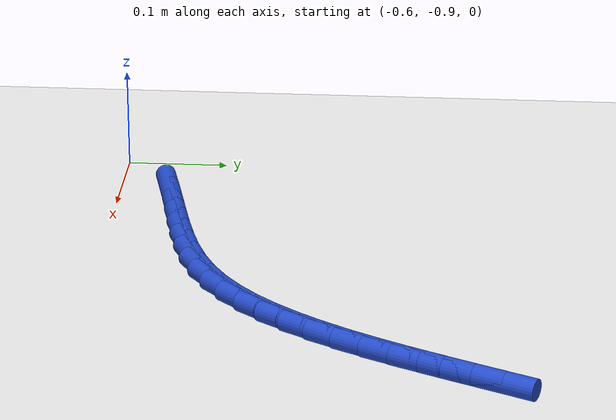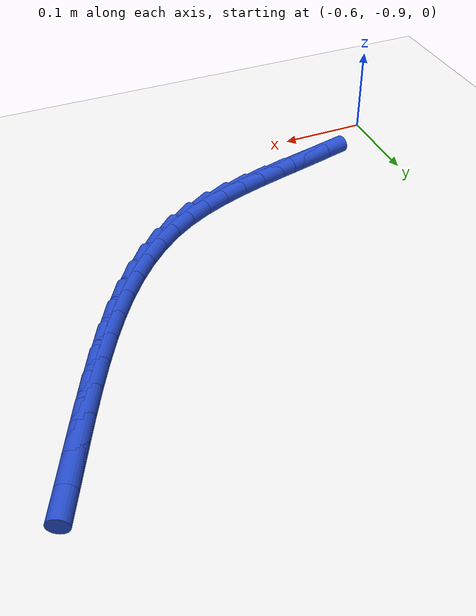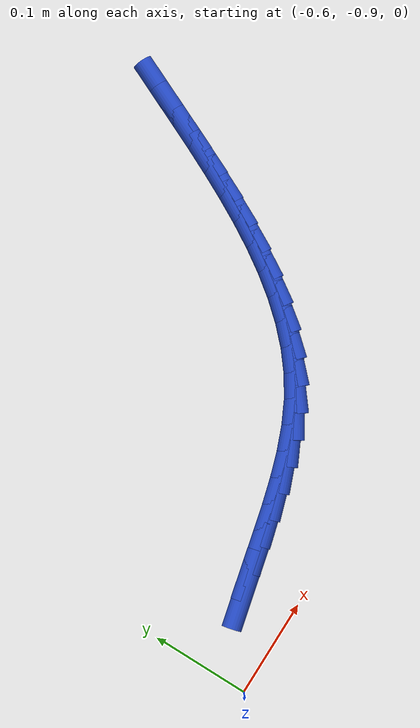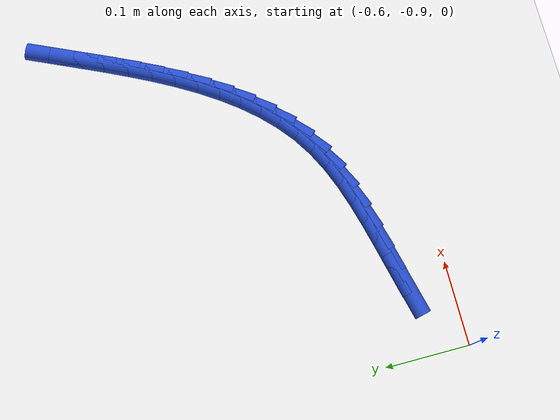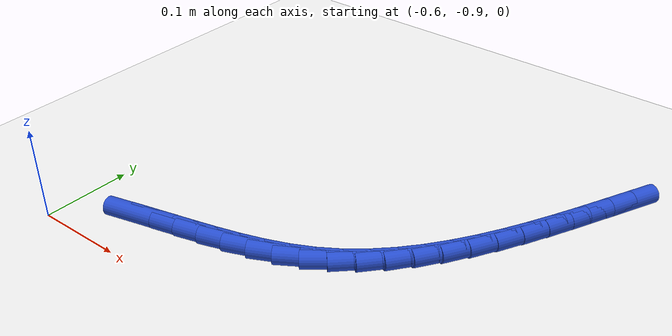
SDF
<sdf version="1.6">
 <world name="default">
  <model name="ground_plane">
   <static>1</static>
   <link name="link">
    <collision name="collision">
     <geometry><plane><normal>0 0 1</normal><size>100 100</size></plane></geometry>
     <surface><friction><ode><mu>100</mu><mu2>50</mu2></ode></friction></surface>
    </collision>
    <visual name="visual">
     <cast_shadows>0</cast_shadows>
     <geometry><plane><normal>0 0 1</normal><size>100 100</size></plane></geometry>
     <material>
      <script><uri>file://media/materials/scripts/gazebo.material</uri><name>Gazebo/WhiteGlow</name></script>
     </material>
    </visual>
   </link>
  </model>
  <model name="line">
   <link name="link_201">
    <pose>-0.5146840576461971 -0.8475410567459667 0.01 0 1.57 0.2367666832200426</pose>
    <collision name="collision">
     <geometry><cylinder><radius>0.01</radius><length>0.08</length></cylinder></geometry>
    </collision>
    <visual name="visual">
     <material>
      <script><name>Gazebo/Blue</name><uri>file://media/materials/scripts/gazebo.material</uri></script>
     </material>
     <geometry><cylinder><radius>0.01</radius><length>0.08</length></cylinder></geometry>
    </visual>
   </link>
   <link name="link_202">
    <pose>-0.4872952087282184 -0.8409323342285917 0.01 0 1.57 0.22991365613538595</pose>
    <collision name="collision">
     <geometry><cylinder><radius>0.01</radius><length>0.08</length></cylinder></geometry>
    </collision>
    <visual name="visual">
     <material>
      <script><name>Gazebo/Blue</name><uri>file://media/materials/scripts/gazebo.material</uri></script>
     </material>
     <geometry><cylinder><radius>0.01</radius><length>0.08</length></cylinder></geometry>
    </visual>
   </link>
   <link name="link_203">
    <pose>-0.4599120040511283 -0.8345232325570638 0.01 0 1.57 0.2395872582302375</pose>
    <collision name="collision">
     <geometry><cylinder><radius>0.01</radius><length>0.08</length></cylinder></geometry>
    </collision>
    <visual name="visual">
     <material>
      <script><name>Gazebo/Blue</name><uri>file://media/materials/scripts/gazebo.material</uri></script>
     </material>
     <geometry><cylinder><radius>0.01</radius><length>0.08</length></cylinder></geometry>
    </visual>
   </link>
   <link name="link_204">
    <pose>-0.4327977948873865 -0.8278997928603868 0.01 0 1.57 0.2663269018035899</pose>
    <collision name="collision">
     <geometry><cylinder><radius>0.01</radius><length>0.08</length></cylinder></geometry>
    </collision>
    <visual name="visual">
     <material>
      <script><name>Gazebo/Blue</name><uri>file://media/materials/scripts/gazebo.material</uri></script>
     </material>
     <geometry><cylinder><radius>0.01</radius><length>0.08</length></cylinder></geometry>
    </visual>
   </link>
   <link name="link_205">
    <pose>-0.4062159325094532 -0.8206480562675655 0.01 0 1.57 0.3111944841151011</pose>
    <collision name="collision">
     <geometry><cylinder><radius>0.01</radius><length>0.08</length></cylinder></geometry>
    </collision>
    <visual name="visual">
     <material>
      <script><name>Gazebo/Blue</name><uri>file://media/materials/scripts/gazebo.material</uri></script>
     </material>
     <geometry><cylinder><radius>0.01</radius><length>0.08</length></cylinder></geometry>
    </visual>
   </link>
   <link name="link_206">
    <pose>-0.380429768189788 -0.8123540639076038 0.01 0 1.57 0.3755936410815409</pose>
    <collision name="collision">
     <geometry><cylinder><radius>0.01</radius><length>0.08</length></cylinder></geometry>
    </collision>
    <visual name="visual">
     <material>
      <script><name>Gazebo/Blue</name><uri>file://media/materials/scripts/gazebo.material</uri></script>
     </material>
     <geometry><cylinder><radius>0.01</radius><length>0.08</length></cylinder></geometry>
    </visual>
   </link>
   <link name="link_207">
    <pose>-0.355702653200851 -0.8026038569095059 0.01 0 1.57 0.46084162789260524</pose>
    <collision name="collision">
     <geometry><cylinder><radius>0.01</radius><length>0.08</length></cylinder></geometry>
    </collision>
    <visual name="visual">
     <material>
      <script><name>Gazebo/Blue</name><uri>file://media/materials/scripts/gazebo.material</uri></script>
     </material>
     <geometry><cylinder><radius>0.01</radius><length>0.08</length></cylinder></geometry>
    </visual>
   </link>
   <link name="link_208">
    <pose>-0.33229793881510133 -0.7909834764022757 0.01 0 1.57 0.5660386385059627</pose>
    <collision name="collision">
     <geometry><cylinder><radius>0.01</radius><length>0.08</length></cylinder></geometry>
    </collision>
    <visual name="visual">
     <material>
      <script><name>Gazebo/Blue</name><uri>file://media/materials/scripts/gazebo.material</uri></script>
     </material>
     <geometry><cylinder><radius>0.01</radius><length>0.08</length></cylinder></geometry>
    </visual>
   </link>
   <link name="link_209">
    <pose>-0.3104607050661104 -0.7771082328702877 0.01 0 1.57 0.6732656633974695</pose>
    <collision name="collision">
     <geometry><cylinder><radius>0.01</radius><length>0.08</length></cylinder></geometry>
    </collision>
    <visual name="visual">
     <material>
      <script><name>Gazebo/Blue</name><uri>file://media/materials/scripts/gazebo.material</uri></script>
     </material>
     <geometry><cylinder><radius>0.01</radius><length>0.08</length></cylinder></geometry>
    </visual>
   </link>
   <link name="link_210">
    <pose>-0.29020954939528315 -0.7609562474160072 0.01 0 1.57 0.7693418570343861</pose>
    <collision name="collision">
     <geometry><cylinder><radius>0.01</radius><length>0.08</length></cylinder></geometry>
    </collision>
    <visual name="visual">
     <material>
      <script><name>Gazebo/Blue</name><uri>file://media/materials/scripts/gazebo.material</uri></script>
     </material>
     <geometry><cylinder><radius>0.01</radius><length>0.08</length></cylinder></geometry>
    </visual>
   </link>
   <link name="link_211">
    <pose>-0.2714099756465933 -0.7427508872872189 0.01 0 1.57 0.8531418538999869</pose>
    <collision name="collision">
     <geometry><cylinder><radius>0.01</radius><length>0.08</length></cylinder></geometry>
    </collision>
    <visual name="visual">
     <material>
      <script><name>Gazebo/Blue</name><uri>file://media/materials/scripts/gazebo.material</uri></script>
     </material>
     <geometry><cylinder><radius>0.01</radius><length>0.08</length></cylinder></geometry>
    </visual>
   </link>
   <link name="link_212">
    <pose>-0.2539246035649222 -0.7227201398738766 0.01 0 1.57 0.9247127865218767</pose>
    <collision name="collision">
     <geometry><cylinder><radius>0.01</radius><length>0.08</length></cylinder></geometry>
    </collision>
    <visual name="visual">
     <material>
      <script><name>Gazebo/Blue</name><uri>file://media/materials/scripts/gazebo.material</uri></script>
     </material>
     <geometry><cylinder><radius>0.01</radius><length>0.08</length></cylinder></geometry>
    </visual>
   </link>
   <link name="link_213">
    <pose>-0.23761605289515134 -0.7010919925659335 0.01 0 1.57 0.9846804826986627</pose>
    <collision name="collision">
     <geometry><cylinder><radius>0.01</radius><length>0.08</length></cylinder></geometry>
    </collision>
    <visual name="visual">
     <material>
      <script><name>Gazebo/Blue</name><uri>file://media/materials/scripts/gazebo.material</uri></script>
     </material>
     <geometry><cylinder><radius>0.01</radius><length>0.08</length></cylinder></geometry>
    </visual>
   </link>
   <link name="link_214">
    <pose>-0.22234694338216182 -0.6780944327533427 0.01 0 1.57 1.0339282504254774</pose>
    <collision name="collision">
     <geometry><cylinder><radius>0.01</radius><length>0.08</length></cylinder></geometry>
    </collision>
    <visual name="visual">
     <material>
      <script><name>Gazebo/Blue</name><uri>file://media/materials/scripts/gazebo.material</uri></script>
     </material>
     <geometry><cylinder><radius>0.01</radius><length>0.08</length></cylinder></geometry>
    </visual>
   </link>
   <link name="link_215">
    <pose>-0.20797989477083464 -0.6539554478260566 0.01 0 1.57 1.0733771109103103</pose>
    <collision name="collision">
     <geometry><cylinder><radius>0.01</radius><length>0.08</length></cylinder></geometry>
    </collision>
    <visual name="visual">
     <material>
      <script><name>Gazebo/Blue</name><uri>file://media/materials/scripts/gazebo.material</uri></script>
     </material>
     <geometry><cylinder><radius>0.01</radius><length>0.08</length></cylinder></geometry>
    </visual>
   </link>
   <link name="link_216">
    <pose>-0.1943775268060519 -0.62890302517403 0.01 0 1.57 1.103855332019859</pose>
    <collision name="collision">
     <geometry><cylinder><radius>0.01</radius><length>0.08</length></cylinder></geometry>
    </collision>
    <visual name="visual">
     <material>
      <script><name>Gazebo/Blue</name><uri>file://media/materials/scripts/gazebo.material</uri></script>
     </material>
     <geometry><cylinder><radius>0.01</radius><length>0.08</length></cylinder></geometry>
    </visual>
   </link>
   <link name="link_217">
    <pose>-0.18140245923269452 -0.6031651521872151 0.01 0 1.57 1.1260293346509591</pose>
    <collision name="collision">
     <geometry><cylinder><radius>0.01</radius><length>0.08</length></cylinder></geometry>
    </collision>
    <visual name="visual">
     <material>
      <script><name>Gazebo/Blue</name><uri>file://media/materials/scripts/gazebo.material</uri></script>
     </material>
     <geometry><cylinder><radius>0.01</radius><length>0.08</length></cylinder></geometry>
    </visual>
   </link>
   <link name="link_218">
    <pose>-0.16891731179564387 -0.5769698162555656 0.01 0 1.57 1.1403701355599836</pose>
    <collision name="collision">
     <geometry><cylinder><radius>0.01</radius><length>0.08</length></cylinder></geometry>
    </collision>
    <visual name="visual">
     <material>
      <script><name>Gazebo/Blue</name><uri>file://media/materials/scripts/gazebo.material</uri></script>
     </material>
     <geometry><cylinder><radius>0.01</radius><length>0.08</length></cylinder></geometry>
    </visual>
   </link>
   <link name="link_219">
    <pose>-0.15678470423978116 -0.5505450047690345 0.01 0 1.57 1.1471366829843448</pose>
    <collision name="collision">
     <geometry><cylinder><radius>0.01</radius><length>0.08</length></cylinder></geometry>
    </collision>
    <visual name="visual">
     <material>
      <script><name>Gazebo/Blue</name><uri>file://media/materials/scripts/gazebo.material</uri></script>
     </material>
     <geometry><cylinder><radius>0.01</radius><length>0.08</length></cylinder></geometry>
    </visual>
   </link>
   <link name="link_220">
    <pose>-0.14486725630998779 -0.524118705117575 0.01 0 1.57 1.1463651968891155</pose>
    <collision name="collision">
     <geometry><cylinder><radius>0.01</radius><length>0.08</length></cylinder></geometry>
    </collision>
    <visual name="visual">
     <material>
      <script><name>Gazebo/Blue</name><uri>file://media/materials/scripts/gazebo.material</uri></script>
     </material>
     <geometry><cylinder><radius>0.01</radius><length>0.08</length></cylinder></geometry>
    </visual>
   </link>
  </model>
 </world>
</sdf>
